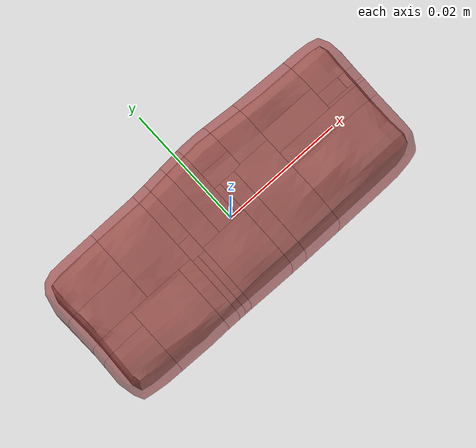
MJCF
<mujoco model="model">
  <compiler angle="radian"/>
  <asset>
    <mesh file="visual/CreamCheese001.obj" name="CreamCheese001_vis"/>
    <texture file="visual/T_BC001.png" name="CreamCheese001_material" type="2d"/>
    <material name="CreamCheese001_material" rgba="1 1 1 1.0" texture="CreamCheese001_material" shininess="-35.000003814697266" specular="0.3103448502657381"/>
    <mesh file="collision/CreamCheese001012.obj" name="CreamCheese001012_mesh"/>
    <mesh file="collision/CreamCheese001014.obj" name="CreamCheese001014_mesh"/>
    <mesh file="collision/CreamCheese001010.obj" name="CreamCheese001010_mesh"/>
    <mesh file="collision/CreamCheese001023.obj" name="CreamCheese001023_mesh"/>
    <mesh file="collision/CreamCheese001019.obj" name="CreamCheese001019_mesh"/>
    <mesh file="collision/CreamCheese001008.obj" name="CreamCheese001008_mesh"/>
    <mesh file="collision/CreamCheese001007.obj" name="CreamCheese001007_mesh"/>
    <mesh file="collision/CreamCheese001028.obj" name="CreamCheese001028_mesh"/>
    <mesh file="collision/CreamCheese001003.obj" name="CreamCheese001003_mesh"/>
    <mesh file="collision/CreamCheese001017.obj" name="CreamCheese001017_mesh"/>
    <mesh file="collision/CreamCheese001027.obj" name="CreamCheese001027_mesh"/>
    <mesh file="collision/CreamCheese001025.obj" name="CreamCheese001025_mesh"/>
    <mesh file="collision/CreamCheese001015.obj" name="CreamCheese001015_mesh"/>
    <mesh file="collision/CreamCheese001006.obj" name="CreamCheese001006_mesh"/>
    <mesh file="collision/CreamCheese001013.obj" name="CreamCheese001013_mesh"/>
    <mesh file="collision/CreamCheese001011.obj" name="CreamCheese001011_mesh"/>
    <mesh file="collision/CreamCheese001021.obj" name="CreamCheese001021_mesh"/>
    <mesh file="collision/CreamCheese001004.obj" name="CreamCheese001004_mesh"/>
    <mesh file="collision/CreamCheese001030.obj" name="CreamCheese001030_mesh"/>
    <mesh file="collision/CreamCheese001020.obj" name="CreamCheese001020_mesh"/>
    <mesh file="collision/CreamCheese001026.obj" name="CreamCheese001026_mesh"/>
    <mesh file="collision/CreamCheese001018.obj" name="CreamCheese001018_mesh"/>
    <mesh file="collision/CreamCheese001022.obj" name="CreamCheese001022_mesh"/>
    <mesh file="collision/CreamCheese001002.obj" name="CreamCheese001002_mesh"/>
    <mesh file="collision/CreamCheese001029.obj" name="CreamCheese001029_mesh"/>
    <mesh file="collision/CreamCheese001009.obj" name="CreamCheese001009_mesh"/>
    <mesh file="collision/CreamCheese001005.obj" name="CreamCheese001005_mesh"/>
    <mesh file="collision/CreamCheese001024.obj" name="CreamCheese001024_mesh"/>
    <mesh file="collision/CreamCheese001001.obj" name="CreamCheese001001_mesh"/>
    <mesh file="collision/CreamCheese001016.obj" name="CreamCheese001016_mesh"/>
  </asset>
  <default>
    <default class="visual">
      <geom conaffinity="0" contype="0" group="1" type="mesh"/>
    </default>
    <default class="collision">
      <geom group="0" rgba="0.5 0 0 0.5"/>
    </default>
    <default class="spawn">
      <geom group="0" rgba="1 1 1 0.5" contype="0" conaffinity="0"/>
      <site group="0" rgba="1 1 1 0.5"/>
    </default>
    <default class="region">
      <geom group="1" conaffinity="0" contype="0" rgba="0 1 0 0" mass="0"/>
    </default>
  </default>
  <worldbody>
    <body>
      <body name="object">
        <geom mesh="CreamCheese001_vis" type="mesh" solimp="0.998 0.998 0.001" solref="0.001 1" density="100" friction="0.95 0.3 0.1" class="visual" material="CreamCheese001_material"/>
        <geom mesh="CreamCheese001012_mesh" type="mesh" class="collision"/>
        <geom mesh="CreamCheese001014_mesh" type="mesh" class="collision"/>
        <geom mesh="CreamCheese001010_mesh" type="mesh" class="collision"/>
        <geom mesh="CreamCheese001023_mesh" type="mesh" class="collision"/>
        <geom mesh="CreamCheese001019_mesh" type="mesh" class="collision"/>
        <geom mesh="CreamCheese001008_mesh" type="mesh" class="collision"/>
        <geom mesh="CreamCheese001007_mesh" type="mesh" class="collision"/>
        <geom mesh="CreamCheese001028_mesh" type="mesh" class="collision"/>
        <geom mesh="CreamCheese001003_mesh" type="mesh" class="collision"/>
        <geom mesh="CreamCheese001017_mesh" type="mesh" class="collision"/>
        <geom mesh="CreamCheese001027_mesh" type="mesh" class="collision"/>
        <geom mesh="CreamCheese001025_mesh" type="mesh" class="collision"/>
        <geom mesh="CreamCheese001015_mesh" type="mesh" class="collision"/>
        <geom mesh="CreamCheese001006_mesh" type="mesh" class="collision"/>
        <geom mesh="CreamCheese001013_mesh" type="mesh" class="collision"/>
        <geom mesh="CreamCheese001011_mesh" type="mesh" class="collision"/>
        <geom mesh="CreamCheese001021_mesh" type="mesh" class="collision"/>
        <geom mesh="CreamCheese001004_mesh" type="mesh" class="collision"/>
        <geom mesh="CreamCheese001030_mesh" type="mesh" class="collision"/>
        <geom mesh="CreamCheese001020_mesh" type="mesh" class="collision"/>
        <geom mesh="CreamCheese001026_mesh" type="mesh" class="collision"/>
        <geom mesh="CreamCheese001018_mesh" type="mesh" class="collision"/>
        <geom mesh="CreamCheese001022_mesh" type="mesh" class="collision"/>
        <geom mesh="CreamCheese001002_mesh" type="mesh" class="collision"/>
        <geom mesh="CreamCheese001029_mesh" type="mesh" class="collision"/>
        <geom mesh="CreamCheese001009_mesh" type="mesh" class="collision"/>
        <geom mesh="CreamCheese001005_mesh" type="mesh" class="collision"/>
        <geom mesh="CreamCheese001024_mesh" type="mesh" class="collision"/>
        <geom mesh="CreamCheese001001_mesh" type="mesh" class="collision"/>
        <geom mesh="CreamCheese001016_mesh" type="mesh" class="collision"/>
        <geom class="region" name="reg_bbox" type="box" pos="-2.310000000000159e-06 3.277500000000051e-05 -0.00014559000000000013" size="0.02817381 0.012049845 0.008358609999999999"/>
      </body>
    </body>
  </worldbody>
  <actuator/>
</mujoco>
